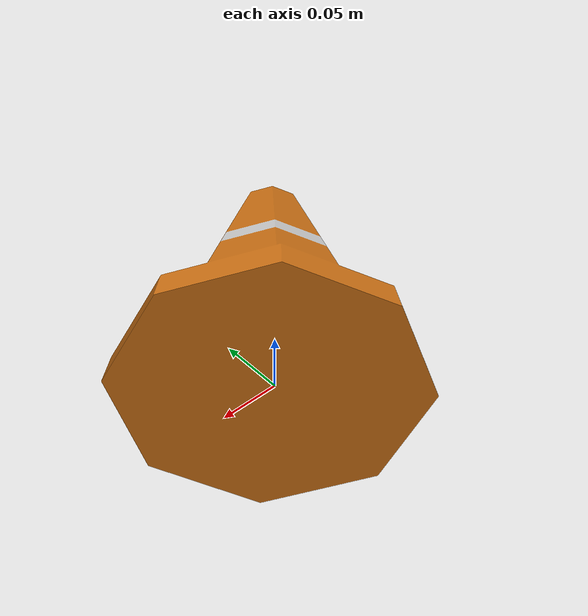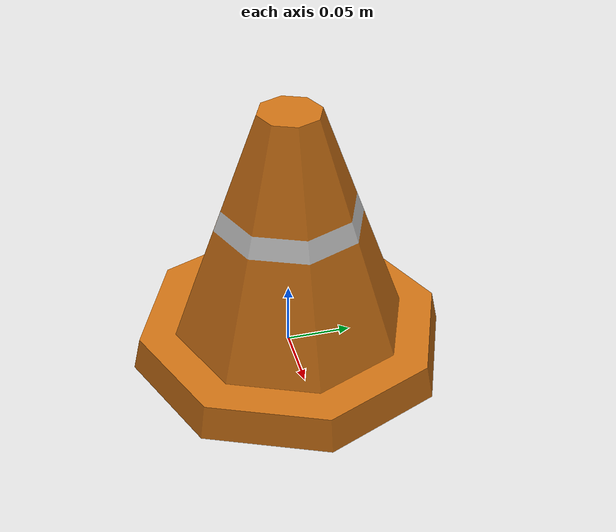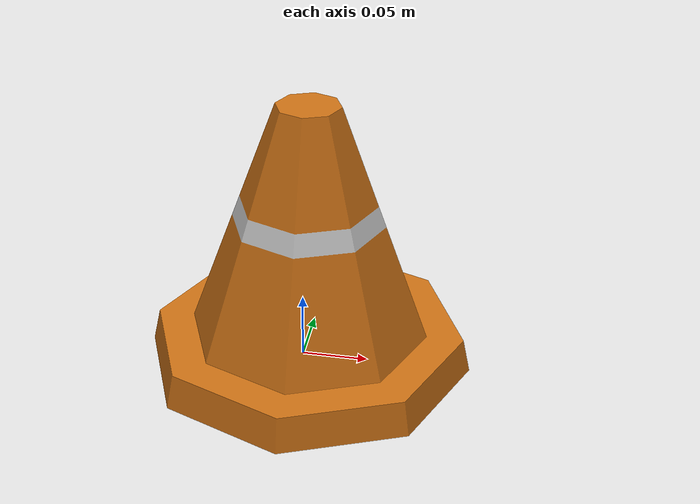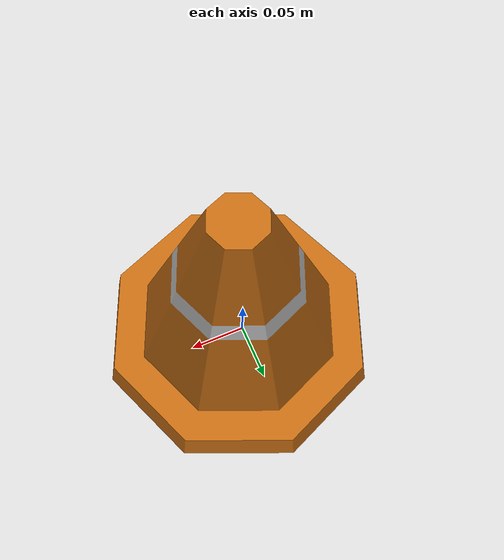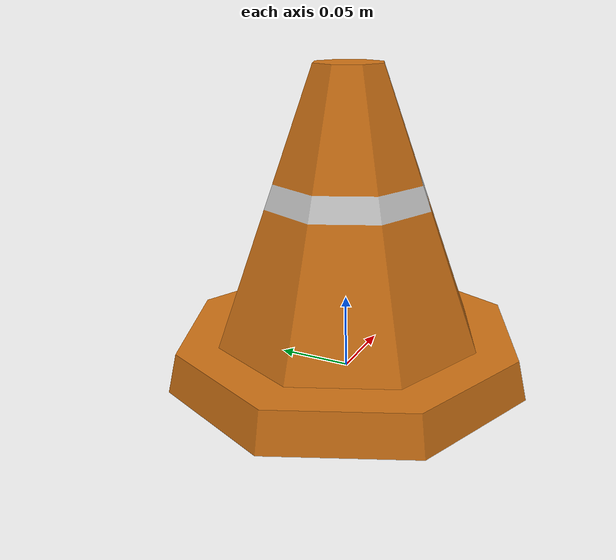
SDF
<?xml version="1.0" ?>
<sdf version="1.8">
  <model name="DecoCone">
    <static>true</static>
    <link name="DecoCone">
      <visual name="visual">
        <geometry>
          <mesh>
            <uri>model://YahboomTrack/DecoCone/meshes/DecoCone.dae</uri>
            <scale>2.0 2.0 2.0</scale>
          </mesh>
        </geometry>
      </visual>
      <collision name="visual">
        <geometry>
          <mesh>
            <uri>model://YahboomTrack/DecoCone/meshes/DecoCone.dae</uri>
            <scale>2.0 2.0 2.0</scale>
          </mesh>
        </geometry>
      </collision>
    </link>
  </model>
</sdf>
